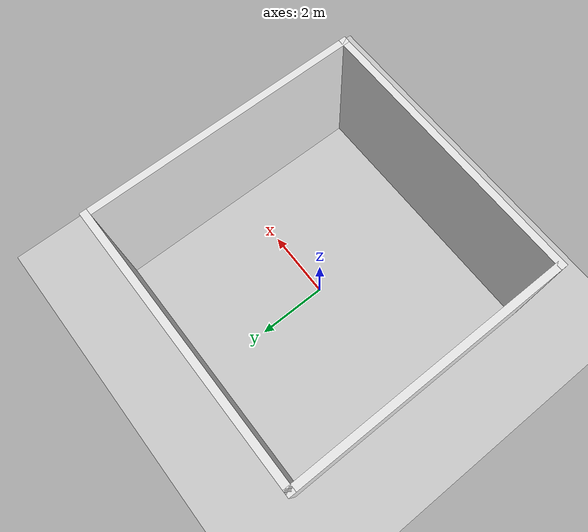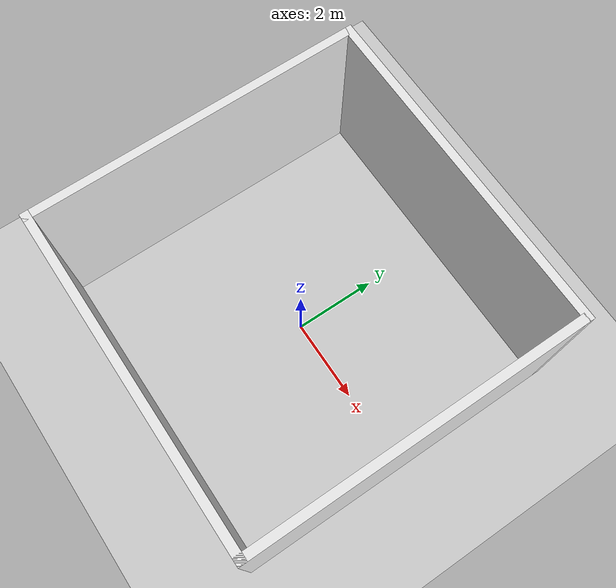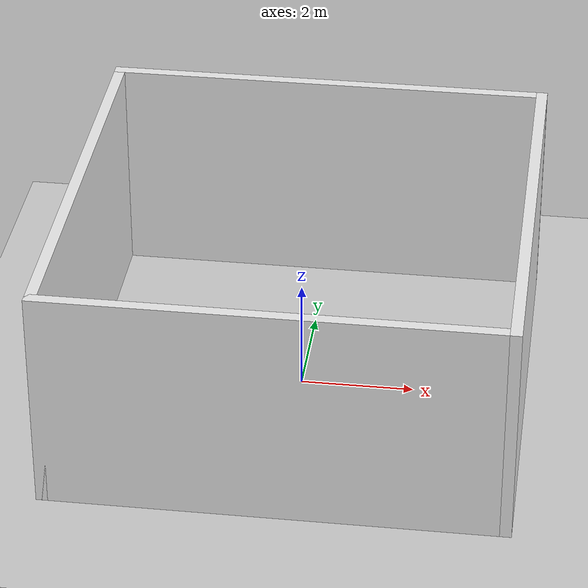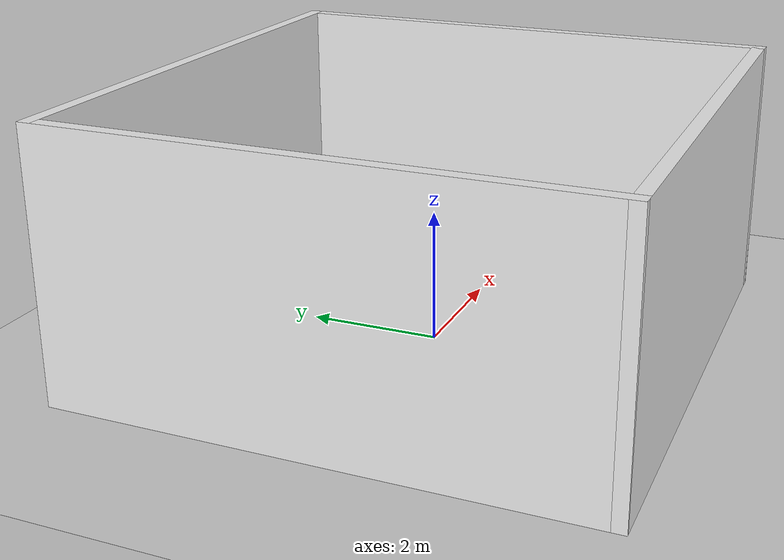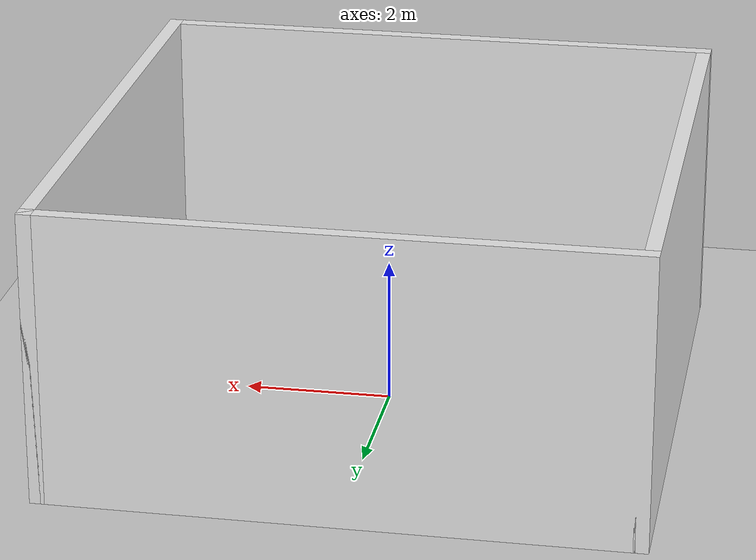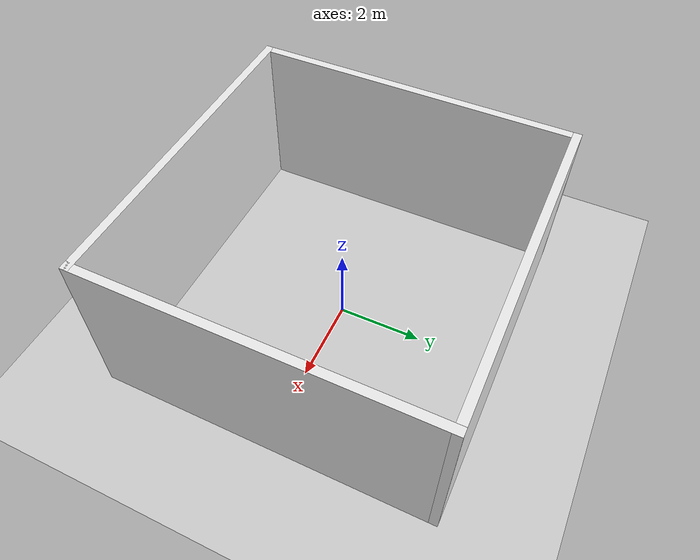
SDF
<sdf version="1.4">
  <world name="default">
    <!-- A global light source -->
    <include>
      <uri>model://sun</uri>
    </include>

    <!-- A ground plane -->
    <include>
      <uri>model://ground_plane</uri>
    </include>

    <physics type="ode">
      <real_time_update_rate>1000.0</real_time_update_rate>
      <max_step_size>0.001</max_step_size>
      <real_time_factor>1</real_time_factor>
      <ode>
        <solver>
          <type>quick</type>
          <iters>150</iters>
          <precon_iters>0</precon_iters>
          <sor>1.400000</sor>
          <use_dynamic_moi_rescaling>1</use_dynamic_moi_rescaling>
        </solver>
        <constraints>
          <cfm>0.00001</cfm>
          <erp>0.2</erp>
          <contact_max_correcting_vel>2000.000000</contact_max_correcting_vel>
          <contact_surface_layer>0.01000</contact_surface_layer>
        </constraints>
      </ode>
    </physics>

    <!-- Load world -->

    <include>
      <uri>model://empty_room</uri>
    </include>
    <scene>
      <ambient>0.4 0.4 0.4 1</ambient>
      <background>0.7 0.7 0.7 1</background>
      <shadows>true</shadows>
    </scene>

    <gui fullscreen='0'>
      <camera name='user_camera'>
        <pose>0.8 2.0 12.0 0 1.5708 1.5708</pose>
        <view_controller>orbit</view_controller>
      </camera>
    </gui>
  </world>
</sdf>

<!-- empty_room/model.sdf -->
<sdf version='1.6'>
  <model name='empty_room'>
    <static>1</static>
    <pose frame=''>0 0 0 0 0 0</pose>
    <link name='Wall_0'>
      <collision name='Wall_0_Collision'>
        <geometry>
          <box>
            <size>8 0.2 4</size>
          </box>
        </geometry>
      </collision>
      <visual name='Wall_0_Visual'>
        <geometry>
          <box>
            <size>8 0.2 4</size>
          </box>
        </geometry>
        <material>
          <script>
            <uri>file://media/materials/scripts/gazebo.material</uri>
            <name>Gazebo/White</name>
          </script>
          <ambient>1 1 1 1</ambient>
        </material>
      </visual>
      <pose frame=''>0 3.9 2 0 0 0</pose>
    </link>
    <link name='Wall_1'>
      <collision name='Wall_1_Collision'>
        <geometry>
          <box>
            <size>8 0.2 4</size>
          </box>
        </geometry>
      </collision>
      <visual name='Wall_1_Visual'>
        <geometry>
          <box>
            <size>8 0.2 4</size>
          </box>
        </geometry>
        <material>
          <script>
            <uri>file://media/materials/scripts/gazebo.material</uri>
            <name>Gazebo/White</name>
          </script>
          <ambient>1 1 1 1</ambient>
        </material>
      </visual>
      <pose frame=''>-3.9 0 2 0 0 1.5708</pose>
    </link>
    <link name='Wall_2'>
      <collision name='Wall_2_Collision'>
        <geometry>
          <box>
            <size>8 0.2 4</size>
          </box>
        </geometry>
      </collision>
      <visual name='Wall_2_Visual'>
        <geometry>
          <box>
            <size>8 0.2 4</size>
          </box>
        </geometry>
        <material>
          <script>
            <uri>file://media/materials/scripts/gazebo.material</uri>
            <name>Gazebo/White</name>
          </script>
          <ambient>1 1 1 1</ambient>
        </material>
      </visual>
      <pose frame=''>0 -3.9 2 0 0 0</pose>
    </link>
    <link name='Wall_3'>
      <collision name='Wall_3_Collision'>
        <geometry>
          <box>
            <size>8 0.2 4</size>
          </box>
        </geometry>
      </collision>
      <visual name='Wall_3_Visual'>
        <geometry>
          <box>
            <size>8 0.2 4</size>
          </box>
        </geometry>
        <material>
          <script>
            <uri>file://media/materials/scripts/gazebo.material</uri>
            <name>Gazebo/White</name>
          </script>
          <ambient>1 1 1 1</ambient>
        </material>
      </visual>
      <pose frame=''>3.9 0 2 0 0 1.5708</pose>
    </link>

    <static>1</static>
  </model>
</sdf>
